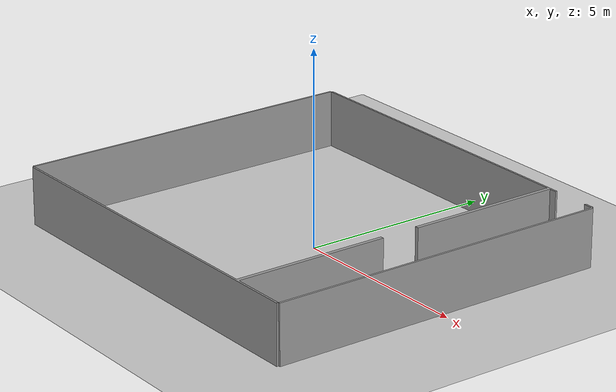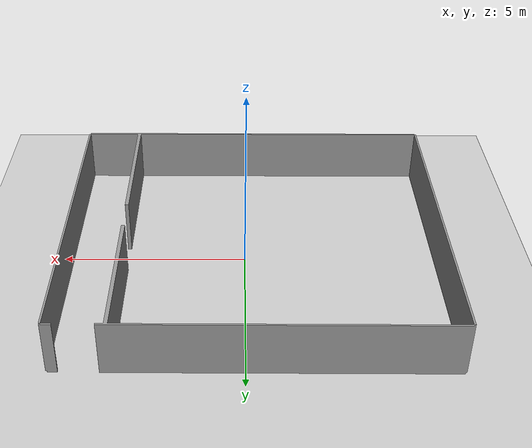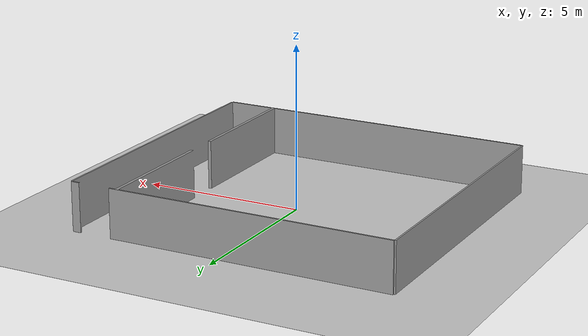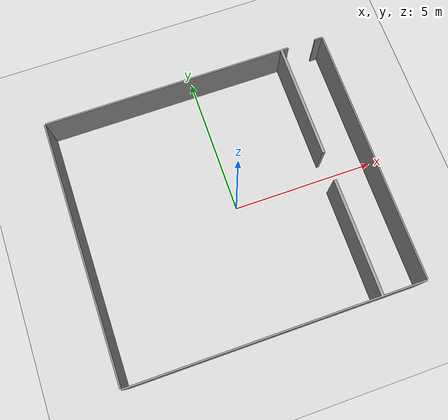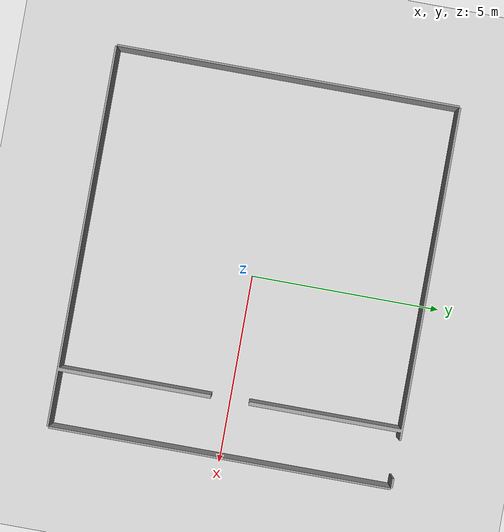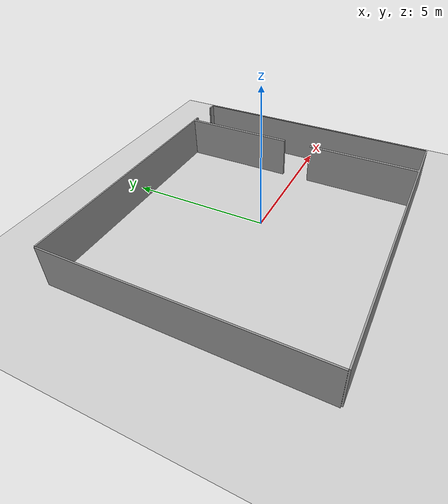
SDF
<sdf version="1.7">
 <world name="default">
  <light name="sun" type="directional">
   <pose>0 0 10 0 -0 0</pose>
   <diffuse>0.8 0.8 0.8 1</diffuse>
   <specular>0.2 0.2 0.2 1</specular>
   <attenuation>
    <range>1000</range>
    <constant>0.9</constant>
    <linear>0.01</linear>
    <quadratic>0.001</quadratic>
   </attenuation>
   <direction>-0.5 0.1 -0.9</direction>
   <spot><inner_angle>0</inner_angle><outer_angle>0</outer_angle><falloff>0</falloff></spot>
  </light>
  <model name="gplane">
   <link name="body">
    <collision name="gplane_coll">
     <geometry><plane><normal>0 0 1</normal><size>50.0 50.0</size></plane></geometry>
     <surface><contact><ode><kp>1e+06</kp><kd>1</kd></ode></contact></surface>
     <laser_retro>2000</laser_retro>
    </collision>
    <visual name="gplane_vis">
     <geometry><plane><normal>0 0 1</normal><size>50.0 50.0</size></plane></geometry>
     <material>
      <script>
       <uri>model://base_materials/carpet/scripts</uri>
       <uri>model://base_materials/carpet/textures</uri>
       <name>carpet/carpet01</name>
      </script>
     </material>
     <cast_shadows>0</cast_shadows>
    </visual>
    <velocity_decay><linear>0</linear><angular>0</angular></velocity_decay>
   </link>
   <static>1</static>
  </model>
  <gravity>0 0 -9.8</gravity>
  <magnetic_field>6e-06 2.3e-05 -4.2e-05</magnetic_field>
  <atmosphere type="adiabatic"/>
  <physics type="ode">
   <max_step_size>0.001</max_step_size>
   <real_time_factor>1</real_time_factor>
   <real_time_update_rate>1000</real_time_update_rate>
  </physics>
  <scene><ambient>0.4 0.4 0.4 1</ambient><background>0.7 0.7 0.7 1</background><shadows>1</shadows></scene>
  <spherical_coordinates>
   <surface_model>EARTH_WGS84</surface_model>
   <latitude_deg>0</latitude_deg>
   <longitude_deg>0</longitude_deg>
   <elevation>0</elevation>
   <heading_deg>0</heading_deg>
  </spherical_coordinates>
  <model name="rnd_room_c3_a">
   <link name="link_0">
    <inertial>
     <mass>1</mass>
     <inertia>
      <ixx>0.166667</ixx>
      <ixy>0</ixy>
      <ixz>0</ixz>
      <iyy>0.166667</iyy>
      <iyz>0</iyz>
      <izz>0.166667</izz>
     </inertia>
    </inertial>
    <visual name="visual">
     <pose>-0.250 0 0 0 -0 0</pose>
     <geometry><mesh><uri>model://RandomRooms/rnd_room_c2_01.dae</uri><scale>1 1 1</scale></mesh></geometry>
     <material>
      <lighting>1</lighting>
      <script><uri>model://RandomRooms/rnd_room_c2_01.dae</uri><name>Gazebo/Grey</name></script>
      <shader type="pixel"><normal_map>__default__</normal_map></shader>
     </material>
    </visual>
    <collision name="collision">
     <pose>-0.25 0 0 0 -0 0</pose>
     <geometry><mesh><uri>model://RandomRooms/rnd_room_c2_01.dae</uri><scale>1 1 1</scale></mesh></geometry>
     <surface>
      <friction>
       <ode><mu>1</mu><mu2>1</mu2><fdir1>0 0 0</fdir1><slip1>0</slip1><slip2>0</slip2></ode>
       <torsional>
        <coefficient>1</coefficient>
        <patch_radius>0</patch_radius>
        <surface_radius>0</surface_radius>
        <use_patch_radius>1</use_patch_radius>
        <ode><slip>0</slip></ode>
       </torsional>
      </friction>
      <bounce><restitution_coefficient>0</restitution_coefficient><threshold>1e+06</threshold></bounce>
      <contact>
       <collide_without_contact>0</collide_without_contact>
       <collide_without_contact_bitmask>1</collide_without_contact_bitmask>
       <collide_bitmask>1</collide_bitmask>
       <ode>
        <soft_cfm>0</soft_cfm>
        <soft_erp>0.2</soft_erp>
        <kp>1e+13</kp>
        <kd>1</kd>
        <max_vel>0.01</max_vel>
        <min_depth>0</min_depth>
       </ode>
       <bullet>
        <split_impulse>1</split_impulse>
        <split_impulse_penetration_threshold>-0.01</split_impulse_penetration_threshold>
        <soft_cfm>0</soft_cfm>
        <soft_erp>0.2</soft_erp>
        <kp>1e+13</kp>
        <kd>1</kd>
       </bullet>
      </contact>
     </surface>
    </collision>
   </link>
   <static>1</static>
  </model>
 </world>
</sdf>
